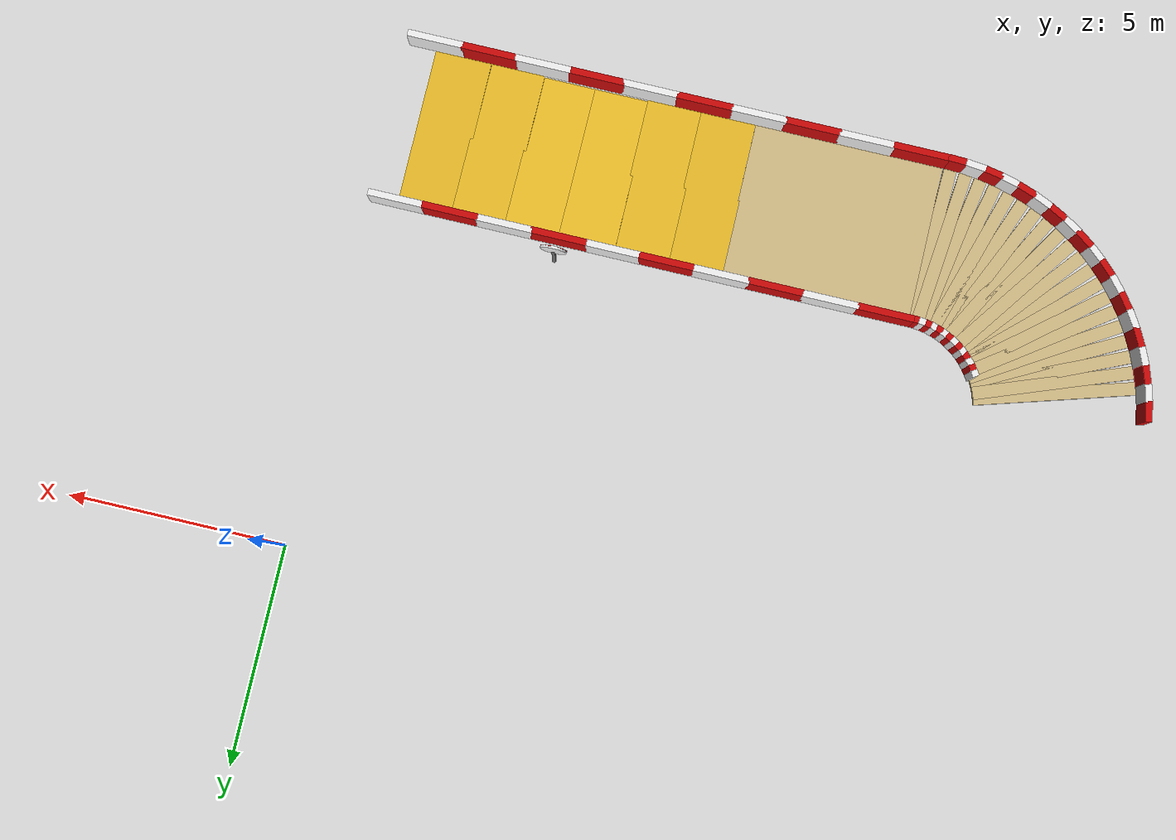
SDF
<sdf version="1.6">
 <world name="evrenos_teknofest_2026">
  <include><uri>model://sun</uri></include>
  <model name="main_course">
   <static>true</static>
   <link name="bottom_before_turn_0">
    <pose>-10.312500 -10.000000 -0.050000 0.000000 0.000000 0.000000</pose>
    <collision name="bottom_before_turn_0_collision">
     <geometry><box><size>4.375000 3.750000 0.100000</size></box></geometry>
    </collision>
    <visual name="bottom_before_turn_0_visual">
     <geometry><box><size>4.375000 3.750000 0.100000</size></box></geometry>
     <material><ambient>0.82 0.73 0.52 1</ambient><diffuse>0.82 0.73 0.52 1</diffuse></material>
    </visual>
   </link>
   <link name="side_slope_0">
    <pose>-1.250000 -10.000000 -0.050000 0.032006 0.000000 0.000000</pose>
    <collision name="side_slope_0_collision">
     <geometry><box><size>1.312500 3.748920 0.100000</size></box></geometry>
    </collision>
    <visual name="side_slope_0_visual">
     <geometry><box><size>1.312500 3.748920 0.100000</size></box></geometry>
     <material><ambient>0.9 0.72 0.15 1</ambient><diffuse>0.9 0.72 0.15 1</diffuse></material>
    </visual>
   </link>
   <link name="side_slope_1">
    <pose>-2.500000 -10.000000 -0.050000 0.080096 0.000000 0.000000</pose>
    <collision name="side_slope_1_collision">
     <geometry><box><size>1.312500 3.743266 0.100000</size></box></geometry>
    </collision>
    <visual name="side_slope_1_visual">
     <geometry><box><size>1.312500 3.743266 0.100000</size></box></geometry>
     <material><ambient>0.9 0.72 0.15 1</ambient><diffuse>0.9 0.72 0.15 1</diffuse></material>
    </visual>
   </link>
   <link name="side_slope_2">
    <pose>-3.750000 -10.000000 -0.050000 0.158656 0.000000 0.000000</pose>
    <collision name="side_slope_2_collision">
     <geometry><box><size>1.312500 3.723948 0.100000</size></box></geometry>
    </collision>
    <visual name="side_slope_2_visual">
     <geometry><box><size>1.312500 3.723948 0.100000</size></box></geometry>
     <material><ambient>0.9 0.72 0.15 1</ambient><diffuse>0.9 0.72 0.15 1</diffuse></material>
    </visual>
   </link>
   <link name="side_slope_3">
    <pose>-5.000000 -10.000000 -0.050000 0.158656 0.000000 0.000000</pose>
    <collision name="side_slope_3_collision">
     <geometry><box><size>1.312500 3.723948 0.100000</size></box></geometry>
    </collision>
    <visual name="side_slope_3_visual">
     <geometry><box><size>1.312500 3.723948 0.100000</size></box></geometry>
     <material><ambient>0.9 0.72 0.15 1</ambient><diffuse>0.9 0.72 0.15 1</diffuse></material>
    </visual>
   </link>
   <link name="side_slope_4">
    <pose>-6.250000 -10.000000 -0.050000 0.080096 0.000000 0.000000</pose>
    <collision name="side_slope_4_collision">
     <geometry><box><size>1.312500 3.743266 0.100000</size></box></geometry>
    </collision>
    <visual name="side_slope_4_visual">
     <geometry><box><size>1.312500 3.743266 0.100000</size></box></geometry>
     <material><ambient>0.9 0.72 0.15 1</ambient><diffuse>0.9 0.72 0.15 1</diffuse></material>
    </visual>
   </link>
   <link name="side_slope_5">
    <pose>-7.500000 -10.000000 -0.050000 0.032006 0.000000 0.000000</pose>
    <collision name="side_slope_5_collision">
     <geometry><box><size>1.312500 3.748920 0.100000</size></box></geometry>
    </collision>
    <visual name="side_slope_5_visual">
     <geometry><box><size>1.312500 3.748920 0.100000</size></box></geometry>
     <material><ambient>0.9 0.72 0.15 1</ambient><diffuse>0.9 0.72 0.15 1</diffuse></material>
    </visual>
   </link>
   <link name="left_turn_road_0">
    <pose>-12.622750 -9.998000 -0.050000 0.000000 0.000000 -3.174318</pose>
    <collision name="left_turn_road_0_collision">
     <geometry><box><size>0.294500 3.750000 0.100000</size></box></geometry>
    </collision>
    <visual name="left_turn_road_0_visual">
     <geometry><box><size>0.294500 3.750000 0.100000</size></box></geometry>
     <material><ambient>0.82 0.73 0.52 1</ambient><diffuse>0.82 0.73 0.52 1</diffuse></material>
    </visual>
   </link>
   <link name="left_turn_road_1">
    <pose>-12.867625 -9.982000 -0.050000 0.000000 0.000000 -3.239767</pose>
    <collision name="left_turn_road_1_collision">
     <geometry><box><size>0.294500 3.750000 0.100000</size></box></geometry>
    </collision>
    <visual name="left_turn_road_1_visual">
     <geometry><box><size>0.294500 3.750000 0.100000</size></box></geometry>
     <material><ambient>0.82 0.73 0.52 1</ambient><diffuse>0.82 0.73 0.52 1</diffuse></material>
    </visual>
   </link>
   <link name="left_turn_road_2">
    <pose>-13.110875 -9.949875 -0.050000 0.000000 0.000000 -3.305217</pose>
    <collision name="left_turn_road_2_collision">
     <geometry><box><size>0.294500 3.750000 0.100000</size></box></geometry>
    </collision>
    <visual name="left_turn_road_2_visual">
     <geometry><box><size>0.294500 3.750000 0.100000</size></box></geometry>
     <material><ambient>0.82 0.73 0.52 1</ambient><diffuse>0.82 0.73 0.52 1</diffuse></material>
    </visual>
   </link>
   <link name="left_turn_road_3">
    <pose>-13.351500 -9.902000 -0.050000 0.000000 0.000000 -3.370667</pose>
    <collision name="left_turn_road_3_collision">
     <geometry><box><size>0.294500 3.750000 0.100000</size></box></geometry>
    </collision>
    <visual name="left_turn_road_3_visual">
     <geometry><box><size>0.294500 3.750000 0.100000</size></box></geometry>
     <material><ambient>0.82 0.73 0.52 1</ambient><diffuse>0.82 0.73 0.52 1</diffuse></material>
    </visual>
   </link>
   <link name="left_turn_road_4">
    <pose>-13.588625 -9.838500 -0.050000 0.000000 0.000000 -3.436117</pose>
    <collision name="left_turn_road_4_collision">
     <geometry><box><size>0.294500 3.750000 0.100000</size></box></geometry>
    </collision>
    <visual name="left_turn_road_4_visual">
     <geometry><box><size>0.294500 3.750000 0.100000</size></box></geometry>
     <material><ambient>0.82 0.73 0.52 1</ambient><diffuse>0.82 0.73 0.52 1</diffuse></material>
    </visual>
   </link>
   <link name="left_turn_road_5">
    <pose>-13.821000 -9.759625 -0.050000 0.000000 0.000000 -3.501567</pose>
    <collision name="left_turn_road_5_collision">
     <geometry><box><size>0.294500 3.750000 0.100000</size></box></geometry>
    </collision>
    <visual name="left_turn_road_5_visual">
     <geometry><box><size>0.294500 3.750000 0.100000</size></box></geometry>
     <material><ambient>0.82 0.73 0.52 1</ambient><diffuse>0.82 0.73 0.52 1</diffuse></material>
    </visual>
   </link>
   <link name="left_turn_road_6">
    <pose>-14.047625 -9.665750 -0.050000 0.000000 0.000000 -3.567017</pose>
    <collision name="left_turn_road_6_collision">
     <geometry><box><size>0.294500 3.750000 0.100000</size></box></geometry>
    </collision>
    <visual name="left_turn_road_6_visual">
     <geometry><box><size>0.294500 3.750000 0.100000</size></box></geometry>
     <material><ambient>0.82 0.73 0.52 1</ambient><diffuse>0.82 0.73 0.52 1</diffuse></material>
    </visual>
   </link>
   <link name="left_turn_road_7">
    <pose>-14.267750 -9.557250 -0.050000 0.000000 0.000000 -3.632467</pose>
    <collision name="left_turn_road_7_collision">
     <geometry><box><size>0.294500 3.750000 0.100000</size></box></geometry>
    </collision>
    <visual name="left_turn_road_7_visual">
     <geometry><box><size>0.294500 3.750000 0.100000</size></box></geometry>
     <material><ambient>0.82 0.73 0.52 1</ambient><diffuse>0.82 0.73 0.52 1</diffuse></material>
    </visual>
   </link>
   <link name="left_turn_road_8">
    <pose>-14.480250 -9.434500 -0.050000 0.000000 0.000000 -3.697916</pose>
    <collision name="left_turn_road_8_collision">
     <geometry><box><size>0.294500 3.750000 0.100000</size></box></geometry>
    </collision>
    <visual name="left_turn_road_8_visual">
     <geometry><box><size>0.294500 3.750000 0.100000</size></box></geometry>
     <material><ambient>0.82 0.73 0.52 1</ambient><diffuse>0.82 0.73 0.52 1</diffuse></material>
    </visual>
   </link>
   <link name="left_turn_road_9">
    <pose>-14.684250 -9.298125 -0.050000 0.000000 0.000000 -3.763366</pose>
    <collision name="left_turn_road_9_collision">
     <geometry><box><size>0.294500 3.750000 0.100000</size></box></geometry>
    </collision>
    <visual name="left_turn_road_9_visual">
     <geometry><box><size>0.294500 3.750000 0.100000</size></box></geometry>
     <material><ambient>0.82 0.73 0.52 1</ambient><diffuse>0.82 0.73 0.52 1</diffuse></material>
    </visual>
   </link>
   <link name="left_turn_road_10">
    <pose>-14.879000 -9.148750 -0.050000 0.000000 0.000000 -3.828816</pose>
    <collision name="left_turn_road_10_collision">
     <geometry><box><size>0.294500 3.750000 0.100000</size></box></geometry>
    </collision>
    <visual name="left_turn_road_10_visual">
     <geometry><box><size>0.294500 3.750000 0.100000</size></box></geometry>
     <material><ambient>0.82 0.73 0.52 1</ambient><diffuse>0.82 0.73 0.52 1</diffuse></material>
    </visual>
   </link>
   <link name="left_turn_road_11">
    <pose>-15.063500 -8.987000 -0.050000 0.000000 0.000000 -3.894266</pose>
    <collision name="left_turn_road_11_collision">
     <geometry><box><size>0.294500 3.750000 0.100000</size></box></geometry>
    </collision>
    <visual name="left_turn_road_11_visual">
     <geometry><box><size>0.294500 3.750000 0.100000</size></box></geometry>
     <material><ambient>0.82 0.73 0.52 1</ambient><diffuse>0.82 0.73 0.52 1</diffuse></material>
    </visual>
   </link>
   <link name="left_turn_road_12">
    <pose>-15.237000 -8.813500 -0.050000 0.000000 0.000000 -3.959716</pose>
    <collision name="left_turn_road_12_collision">
     <geometry><box><size>0.294500 3.750000 0.100000</size></box></geometry>
    </collision>
    <visual name="left_turn_road_12_visual">
     <geometry><box><size>0.294500 3.750000 0.100000</size></box></geometry>
     <material><ambient>0.82 0.73 0.52 1</ambient><diffuse>0.82 0.73 0.52 1</diffuse></material>
    </visual>
   </link>
   <link name="left_turn_road_13">
    <pose>-15.398750 -8.629000 -0.050000 0.000000 0.000000 -4.025166</pose>
    <collision name="left_turn_road_13_collision">
     <geometry><box><size>0.294500 3.750000 0.100000</size></box></geometry>
    </collision>
    <visual name="left_turn_road_13_visual">
     <geometry><box><size>0.294500 3.750000 0.100000</size></box></geometry>
     <material><ambient>0.82 0.73 0.52 1</ambient><diffuse>0.82 0.73 0.52 1</diffuse></material>
    </visual>
   </link>
   <link name="left_turn_road_14">
    <pose>-15.548125 -8.434250 -0.050000 0.000000 0.000000 -4.090615</pose>
    <collision name="left_turn_road_14_collision">
     <geometry><box><size>0.294500 3.750000 0.100000</size></box></geometry>
    </collision>
    <visual name="left_turn_road_14_visual">
     <geometry><box><size>0.294500 3.750000 0.100000</size></box></geometry>
     <material><ambient>0.82 0.73 0.52 1</ambient><diffuse>0.82 0.73 0.52 1</diffuse></material>
    </visual>
   </link>
   <link name="left_turn_road_15">
    <pose>-15.684500 -8.230250 -0.050000 0.000000 0.000000 -4.156065</pose>
    <collision name="left_turn_road_15_collision">
     <geometry><box><size>0.294500 3.750000 0.100000</size></box></geometry>
    </collision>
    <visual name="left_turn_road_15_visual">
     <geometry><box><size>0.294500 3.750000 0.100000</size></box></geometry>
     <material><ambient>0.82 0.73 0.52 1</ambient><diffuse>0.82 0.73 0.52 1</diffuse></material>
    </visual>
   </link>
   <link name="left_turn_road_16">
    <pose>-15.807250 -8.017750 -0.050000 0.000000 0.000000 -4.221515</pose>
    <collision name="left_turn_road_16_collision">
     <geometry><box><size>0.294500 3.750000 0.100000</size></box></geometry>
    </collision>
    <visual name="left_turn_road_16_visual">
     <geometry><box><size>0.294500 3.750000 0.100000</size></box></geometry>
     <material><ambient>0.82 0.73 0.52 1</ambient><diffuse>0.82 0.73 0.52 1</diffuse></material>
    </visual>
   </link>
   <link name="left_turn_road_17">
    <pose>-15.915750 -7.797625 -0.050000 0.000000 0.000000 -4.286965</pose>
    <collision name="left_turn_road_17_collision">
     <geometry><box><size>0.294500 3.750000 0.100000</size></box></geometry>
    </collision>
    <visual name="left_turn_road_17_visual">
     <geometry><box><size>0.294500 3.750000 0.100000</size></box></geometry>
     <material><ambient>0.82 0.73 0.52 1</ambient><diffuse>0.82 0.73 0.52 1</diffuse></material>
    </visual>
   </link>
   <link name="left_turn_road_18">
    <pose>-16.009625 -7.571000 -0.050000 0.000000 0.000000 -4.352415</pose>
    <collision name="left_turn_road_18_collision">
     <geometry><box><size>0.294500 3.750000 0.100000</size></box></geometry>
    </collision>
    <visual name="left_turn_road_18_visual">
     <geometry><box><size>0.294500 3.750000 0.100000</size></box></geometry>
     <material><ambient>0.82 0.73 0.52 1</ambient><diffuse>0.82 0.73 0.52 1</diffuse></material>
    </visual>
   </link>
   <link name="left_turn_road_19">
    <pose>-16.088500 -7.338625 -0.050000 0.000000 0.000000 -4.417865</pose>
    <collision name="left_turn_road_19_collision">
     <geometry><box><size>0.294500 3.750000 0.100000</size></box></geometry>
    </collision>
    <visual name="left_turn_road_19_visual">
     <geometry><box><size>0.294500 3.750000 0.100000</size></box></geometry>
     <material><ambient>0.82 0.73 0.52 1</ambient><diffuse>0.82 0.73 0.52 1</diffuse></material>
    </visual>
   </link>
   <link name="bottom_bar_-1_0">
    <pose>-11.875000 -11.875000 0.400000 0.000000 0.000000 0.000000</pose>
    <collision name="bottom_bar_-1_0_collision">
     <geometry><box><size>1.287500 0.150000 0.800000</size></box></geometry>
    </collision>
    <visual name="bottom_bar_-1_0_visual">
     <geometry><box><size>1.287500 0.150000 0.800000</size></box></geometry>
     <material><ambient>0.8 0.03 0.03 1</ambient><diffuse>0.8 0.03 0.03 1</diffuse></material>
    </visual>
   </link>
   <link name="bottom_bar_-1_1">
    <pose>-10.625000 -11.875000 0.400000 0.000000 0.000000 0.000000</pose>
    <collision name="bottom_bar_-1_1_collision">
     <geometry><box><size>1.287500 0.150000 0.800000</size></box></geometry>
    </collision>
    <visual name="bottom_bar_-1_1_visual">
     <geometry><box><size>1.287500 0.150000 0.800000</size></box></geometry>
     <material><ambient>0.95 0.95 0.95 1</ambient><diffuse>0.95 0.95 0.95 1</diffuse></material>
    </visual>
   </link>
   <link name="bottom_bar_-1_2">
    <pose>-9.375000 -11.875000 0.400000 0.000000 0.000000 0.000000</pose>
    <collision name="bottom_bar_-1_2_collision">
     <geometry><box><size>1.287500 0.150000 0.800000</size></box></geometry>
    </collision>
    <visual name="bottom_bar_-1_2_visual">
     <geometry><box><size>1.287500 0.150000 0.800000</size></box></geometry>
     <material><ambient>0.8 0.03 0.03 1</ambient><diffuse>0.8 0.03 0.03 1</diffuse></material>
    </visual>
   </link>
   <link name="bottom_bar_-1_3">
    <pose>-8.125000 -11.875000 0.400000 0.000000 0.000000 0.000000</pose>
    <collision name="bottom_bar_-1_3_collision">
     <geometry><box><size>1.287500 0.150000 0.800000</size></box></geometry>
    </collision>
    <visual name="bottom_bar_-1_3_visual">
     <geometry><box><size>1.287500 0.150000 0.800000</size></box></geometry>
     <material><ambient>0.95 0.95 0.95 1</ambient><diffuse>0.95 0.95 0.95 1</diffuse></material>
    </visual>
   </link>
   <link name="bottom_bar_-1_4">
    <pose>-6.875000 -11.875000 0.400000 0.000000 0.000000 0.000000</pose>
    <collision name="bottom_bar_-1_4_collision">
     <geometry><box><size>1.287500 0.150000 0.800000</size></box></geometry>
    </collision>
    <visual name="bottom_bar_-1_4_visual">
     <geometry><box><size>1.287500 0.150000 0.800000</size></box></geometry>
     <material><ambient>0.8 0.03 0.03 1</ambient><diffuse>0.8 0.03 0.03 1</diffuse></material>
    </visual>
   </link>
   <link name="bottom_bar_-1_5">
    <pose>-5.625000 -11.875000 0.400000 0.000000 0.000000 0.000000</pose>
    <collision name="bottom_bar_-1_5_collision">
     <geometry><box><size>1.287500 0.150000 0.800000</size></box></geometry>
    </collision>
    <visual name="bottom_bar_-1_5_visual">
     <geometry><box><size>1.287500 0.150000 0.800000</size></box></geometry>
     <material><ambient>0.95 0.95 0.95 1</ambient><diffuse>0.95 0.95 0.95 1</diffuse></material>
    </visual>
   </link>
   <link name="bottom_bar_-1_6">
    <pose>-4.375000 -11.875000 0.400000 0.000000 0.000000 0.000000</pose>
    <collision name="bottom_bar_-1_6_collision">
     <geometry><box><size>1.287500 0.150000 0.800000</size></box></geometry>
    </collision>
    <visual name="bottom_bar_-1_6_visual">
     <geometry><box><size>1.287500 0.150000 0.800000</size></box></geometry>
     <material><ambient>0.8 0.03 0.03 1</ambient><diffuse>0.8 0.03 0.03 1</diffuse></material>
    </visual>
   </link>
   <link name="bottom_bar_-1_7">
    <pose>-3.125000 -11.875000 0.400000 0.000000 0.000000 0.000000</pose>
    <collision name="bottom_bar_-1_7_collision">
     <geometry><box><size>1.287500 0.150000 0.800000</size></box></geometry>
    </collision>
    <visual name="bottom_bar_-1_7_visual">
     <geometry><box><size>1.287500 0.150000 0.800000</size></box></geometry>
     <material><ambient>0.95 0.95 0.95 1</ambient><diffuse>0.95 0.95 0.95 1</diffuse></material>
    </visual>
   </link>
   <link name="bottom_bar_-1_8">
    <pose>-1.875000 -11.875000 0.400000 0.000000 0.000000 0.000000</pose>
    <collision name="bottom_bar_-1_8_collision">
     <geometry><box><size>1.287500 0.150000 0.800000</size></box></geometry>
    </collision>
    <visual name="bottom_bar_-1_8_visual">
     <geometry><box><size>1.287500 0.150000 0.800000</size></box></geometry>
     <material><ambient>0.8 0.03 0.03 1</ambient><diffuse>0.8 0.03 0.03 1</diffuse></material>
    </visual>
   </link>
   <link name="bottom_bar_-1_9">
    <pose>-0.625000 -11.875000 0.400000 0.000000 0.000000 0.000000</pose>
    <collision name="bottom_bar_-1_9_collision">
     <geometry><box><size>1.287500 0.150000 0.800000</size></box></geometry>
    </collision>
    <visual name="bottom_bar_-1_9_visual">
     <geometry><box><size>1.287500 0.150000 0.800000</size></box></geometry>
     <material><ambient>0.95 0.95 0.95 1</ambient><diffuse>0.95 0.95 0.95 1</diffuse></material>
    </visual>
   </link>
   <link name="bottom_bar_1_0">
    <pose>-11.875000 -8.125000 0.400000 0.000000 0.000000 0.000000</pose>
    <collision name="bottom_bar_1_0_collision">
     <geometry><box><size>1.287500 0.150000 0.800000</size></box></geometry>
    </collision>
    <visual name="bottom_bar_1_0_visual">
     <geometry><box><size>1.287500 0.150000 0.800000</size></box></geometry>
     <material><ambient>0.8 0.03 0.03 1</ambient><diffuse>0.8 0.03 0.03 1</diffuse></material>
    </visual>
   </link>
   <link name="bottom_bar_1_1">
    <pose>-10.625000 -8.125000 0.400000 0.000000 0.000000 0.000000</pose>
    <collision name="bottom_bar_1_1_collision">
     <geometry><box><size>1.287500 0.150000 0.800000</size></box></geometry>
    </collision>
    <visual name="bottom_bar_1_1_visual">
     <geometry><box><size>1.287500 0.150000 0.800000</size></box></geometry>
     <material><ambient>0.95 0.95 0.95 1</ambient><diffuse>0.95 0.95 0.95 1</diffuse></material>
    </visual>
   </link>
   <link name="bottom_bar_1_2">
    <pose>-9.375000 -8.125000 0.400000 0.000000 0.000000 0.000000</pose>
    <collision name="bottom_bar_1_2_collision">
     <geometry><box><size>1.287500 0.150000 0.800000</size></box></geometry>
    </collision>
    <visual name="bottom_bar_1_2_visual">
     <geometry><box><size>1.287500 0.150000 0.800000</size></box></geometry>
     <material><ambient>0.8 0.03 0.03 1</ambient><diffuse>0.8 0.03 0.03 1</diffuse></material>
    </visual>
   </link>
   <link name="bottom_bar_1_3">
    <pose>-8.125000 -8.125000 0.400000 0.000000 0.000000 0.000000</pose>
    <collision name="bottom_bar_1_3_collision">
     <geometry><box><size>1.287500 0.150000 0.800000</size></box></geometry>
    </collision>
    <visual name="bottom_bar_1_3_visual">
     <geometry><box><size>1.287500 0.150000 0.800000</size></box></geometry>
     <material><ambient>0.95 0.95 0.95 1</ambient><diffuse>0.95 0.95 0.95 1</diffuse></material>
    </visual>
   </link>
   <link name="bottom_bar_1_4">
    <pose>-6.875000 -8.125000 0.400000 0.000000 0.000000 0.000000</pose>
    <collision name="bottom_bar_1_4_collision">
     <geometry><box><size>1.287500 0.150000 0.800000</size></box></geometry>
    </collision>
    <visual name="bottom_bar_1_4_visual">
     <geometry><box><size>1.287500 0.150000 0.800000</size></box></geometry>
     <material><ambient>0.8 0.03 0.03 1</ambient><diffuse>0.8 0.03 0.03 1</diffuse></material>
    </visual>
   </link>
   <link name="bottom_bar_1_5">
    <pose>-5.625000 -8.125000 0.400000 0.000000 0.000000 0.000000</pose>
    <collision name="bottom_bar_1_5_collision">
     <geometry><box><size>1.287500 0.150000 0.800000</size></box></geometry>
    </collision>
    <visual name="bottom_bar_1_5_visual">
     <geometry><box><size>1.287500 0.150000 0.800000</size></box></geometry>
     <material><ambient>0.95 0.95 0.95 1</ambient><diffuse>0.95 0.95 0.95 1</diffuse></material>
    </visual>
   </link>
   <link name="bottom_bar_1_6">
    <pose>-4.375000 -8.125000 0.400000 0.000000 0.000000 0.000000</pose>
    <collision name="bottom_bar_1_6_collision">
     <geometry><box><size>1.287500 0.150000 0.800000</size></box></geometry>
    </collision>
    <visual name="bottom_bar_1_6_visual">
     <geometry><box><size>1.287500 0.150000 0.800000</size></box></geometry>
     <material><ambient>0.8 0.03 0.03 1</ambient><diffuse>0.8 0.03 0.03 1</diffuse></material>
    </visual>
   </link>
   <link name="bottom_bar_1_7">
    <pose>-3.125000 -8.125000 0.400000 0.000000 0.000000 0.000000</pose>
    <collision name="bottom_bar_1_7_collision">
     <geometry><box><size>1.287500 0.150000 0.800000</size></box></geometry>
    </collision>
    <visual name="bottom_bar_1_7_visual">
     <geometry><box><size>1.287500 0.150000 0.800000</size></box></geometry>
     <material><ambient>0.95 0.95 0.95 1</ambient><diffuse>0.95 0.95 0.95 1</diffuse></material>
    </visual>
   </link>
   <link name="bottom_bar_1_8">
    <pose>-1.875000 -8.125000 0.400000 0.000000 0.000000 0.000000</pose>
    <collision name="bottom_bar_1_8_collision">
     <geometry><box><size>1.287500 0.150000 0.800000</size></box></geometry>
    </collision>
    <visual name="bottom_bar_1_8_visual">
     <geometry><box><size>1.287500 0.150000 0.800000</size></box></geometry>
     <material><ambient>0.8 0.03 0.03 1</ambient><diffuse>0.8 0.03 0.03 1</diffuse></material>
    </visual>
   </link>
   <link name="bottom_bar_1_9">
    <pose>-0.625000 -8.125000 0.400000 0.000000 0.000000 0.000000</pose>
    <collision name="bottom_bar_1_9_collision">
     <geometry><box><size>1.287500 0.150000 0.800000</size></box></geometry>
    </collision>
    <visual name="bottom_bar_1_9_visual">
     <geometry><box><size>1.287500 0.150000 0.800000</size></box></geometry>
     <material><ambient>0.95 0.95 0.95 1</ambient><diffuse>0.95 0.95 0.95 1</diffuse></material>
    </visual>
   </link>
   <link name="left_turn_bar_0_0">
    <pose>-12.570125 -8.123750 0.400000 0.000000 0.000000 -3.178993</pose>
    <collision name="left_turn_bar_0_0_collision">
     <geometry><box><size>0.154250 0.150000 0.800000</size></box></geometry>
    </collision>
    <visual name="left_turn_bar_0_0_visual">
     <geometry><box><size>0.154250 0.150000 0.800000</size></box></geometry>
     <material><ambient>0.8 0.03 0.03 1</ambient><diffuse>0.8 0.03 0.03 1</diffuse></material>
    </visual>
   </link>
   <link name="left_turn_bar_0_1">
    <pose>-12.709875 -8.113250 0.400000 0.000000 0.000000 -3.253792</pose>
    <collision name="left_turn_bar_0_1_collision">
     <geometry><box><size>0.154250 0.150000 0.800000</size></box></geometry>
    </collision>
    <visual name="left_turn_bar_0_1_visual">
     <geometry><box><size>0.154250 0.150000 0.800000</size></box></geometry>
     <material><ambient>0.95 0.95 0.95 1</ambient><diffuse>0.95 0.95 0.95 1</diffuse></material>
    </visual>
   </link>
   <link name="left_turn_bar_0_2">
    <pose>-12.848625 -8.092250 0.400000 0.000000 0.000000 -3.328592</pose>
    <collision name="left_turn_bar_0_2_collision">
     <geometry><box><size>0.154250 0.150000 0.800000</size></box></geometry>
    </collision>
    <visual name="left_turn_bar_0_2_visual">
     <geometry><box><size>0.154250 0.150000 0.800000</size></box></geometry>
     <material><ambient>0.8 0.03 0.03 1</ambient><diffuse>0.8 0.03 0.03 1</diffuse></material>
    </visual>
   </link>
   <link name="left_turn_bar_0_3">
    <pose>-12.985250 -8.061125 0.400000 0.000000 0.000000 -3.403392</pose>
    <collision name="left_turn_bar_0_3_collision">
     <geometry><box><size>0.154250 0.150000 0.800000</size></box></geometry>
    </collision>
    <visual name="left_turn_bar_0_3_visual">
     <geometry><box><size>0.154250 0.150000 0.800000</size></box></geometry>
     <material><ambient>0.95 0.95 0.95 1</ambient><diffuse>0.95 0.95 0.95 1</diffuse></material>
    </visual>
   </link>
   <link name="left_turn_bar_0_4">
    <pose>-13.119250 -8.019750 0.400000 0.000000 0.000000 -3.478192</pose>
    <collision name="left_turn_bar_0_4_collision">
     <geometry><box><size>0.154250 0.150000 0.800000</size></box></geometry>
    </collision>
    <visual name="left_turn_bar_0_4_visual">
     <geometry><box><size>0.154250 0.150000 0.800000</size></box></geometry>
     <material><ambient>0.8 0.03 0.03 1</ambient><diffuse>0.8 0.03 0.03 1</diffuse></material>
    </visual>
   </link>
   <link name="left_turn_bar_0_5">
    <pose>-13.249750 -7.968500 0.400000 0.000000 0.000000 -3.552992</pose>
    <collision name="left_turn_bar_0_5_collision">
     <geometry><box><size>0.154250 0.150000 0.800000</size></box></geometry>
    </collision>
    <visual name="left_turn_bar_0_5_visual">
     <geometry><box><size>0.154250 0.150000 0.800000</size></box></geometry>
     <material><ambient>0.95 0.95 0.95 1</ambient><diffuse>0.95 0.95 0.95 1</diffuse></material>
    </visual>
   </link>
   <link name="left_turn_bar_0_6">
    <pose>-13.376125 -7.907750 0.400000 0.000000 0.000000 -3.627792</pose>
    <collision name="left_turn_bar_0_6_collision">
     <geometry><box><size>0.154250 0.150000 0.800000</size></box></geometry>
    </collision>
    <visual name="left_turn_bar_0_6_visual">
     <geometry><box><size>0.154250 0.150000 0.800000</size></box></geometry>
     <material><ambient>0.8 0.03 0.03 1</ambient><diffuse>0.8 0.03 0.03 1</diffuse></material>
    </visual>
   </link>
   <link name="left_turn_bar_0_7">
    <pose>-13.497500 -7.837625 0.400000 0.000000 0.000000 -3.702591</pose>
    <collision name="left_turn_bar_0_7_collision">
     <geometry><box><size>0.154250 0.150000 0.800000</size></box></geometry>
    </collision>
    <visual name="left_turn_bar_0_7_visual">
     <geometry><box><size>0.154250 0.150000 0.800000</size></box></geometry>
     <material><ambient>0.95 0.95 0.95 1</ambient><diffuse>0.95 0.95 0.95 1</diffuse></material>
    </visual>
   </link>
   <link name="left_turn_bar_0_8">
    <pose>-13.613375 -7.758625 0.400000 0.000000 0.000000 -3.777391</pose>
    <collision name="left_turn_bar_0_8_collision">
     <geometry><box><size>0.154250 0.150000 0.800000</size></box></geometry>
    </collision>
    <visual name="left_turn_bar_0_8_visual">
     <geometry><box><size>0.154250 0.150000 0.800000</size></box></geometry>
     <material><ambient>0.8 0.03 0.03 1</ambient><diffuse>0.8 0.03 0.03 1</diffuse></material>
    </visual>
   </link>
   <link name="left_turn_bar_0_9">
    <pose>-13.723000 -7.671250 0.400000 0.000000 0.000000 -3.852191</pose>
    <collision name="left_turn_bar_0_9_collision">
     <geometry><box><size>0.154250 0.150000 0.800000</size></box></geometry>
    </collision>
    <visual name="left_turn_bar_0_9_visual">
     <geometry><box><size>0.154250 0.150000 0.800000</size></box></geometry>
     <material><ambient>0.95 0.95 0.95 1</ambient><diffuse>0.95 0.95 0.95 1</diffuse></material>
    </visual>
   </link>
   <link name="left_turn_bar_0_10">
    <pose>-13.825875 -7.575875 0.400000 0.000000 0.000000 -3.926991</pose>
    <collision name="left_turn_bar_0_10_collision">
     <geometry><box><size>0.154250 0.150000 0.800000</size></box></geometry>
    </collision>
    <visual name="left_turn_bar_0_10_visual">
     <geometry><box><size>0.154250 0.150000 0.800000</size></box></geometry>
     <material><ambient>0.8 0.03 0.03 1</ambient><diffuse>0.8 0.03 0.03 1</diffuse></material>
    </visual>
   </link>
   <link name="left_turn_bar_0_11">
    <pose>-13.921250 -7.473000 0.400000 0.000000 0.000000 -4.001791</pose>
    <collision name="left_turn_bar_0_11_collision">
     <geometry><box><size>0.154250 0.150000 0.800000</size></box></geometry>
    </collision>
    <visual name="left_turn_bar_0_11_visual">
     <geometry><box><size>0.154250 0.150000 0.800000</size></box></geometry>
     <material><ambient>0.95 0.95 0.95 1</ambient><diffuse>0.95 0.95 0.95 1</diffuse></material>
    </visual>
   </link>
   <link name="left_turn_bar_0_12">
    <pose>-14.008625 -7.363375 0.400000 0.000000 0.000000 -4.076590</pose>
    <collision name="left_turn_bar_0_12_collision">
     <geometry><box><size>0.154250 0.150000 0.800000</size></box></geometry>
    </collision>
    <visual name="left_turn_bar_0_12_visual">
     <geometry><box><size>0.154250 0.150000 0.800000</size></box></geometry>
     <material><ambient>0.8 0.03 0.03 1</ambient><diffuse>0.8 0.03 0.03 1</diffuse></material>
    </visual>
   </link>
   <link name="left_turn_bar_0_13">
    <pose>-14.087625 -7.247500 0.400000 0.000000 0.000000 -4.151390</pose>
    <collision name="left_turn_bar_0_13_collision">
     <geometry><box><size>0.154250 0.150000 0.800000</size></box></geometry>
    </collision>
    <visual name="left_turn_bar_0_13_visual">
     <geometry><box><size>0.154250 0.150000 0.800000</size></box></geometry>
     <material><ambient>0.95 0.95 0.95 1</ambient><diffuse>0.95 0.95 0.95 1</diffuse></material>
    </visual>
   </link>
   <link name="left_turn_bar_1_0">
    <pose>-12.710375 -11.871125 0.400000 0.000000 0.000000 -3.178993</pose>
    <collision name="left_turn_bar_1_0_collision">
     <geometry><box><size>0.462875 0.150000 0.800000</size></box></geometry>
    </collision>
    <visual name="left_turn_bar_1_0_visual">
     <geometry><box><size>0.462875 0.150000 0.800000</size></box></geometry>
     <material><ambient>0.8 0.03 0.03 1</ambient><diffuse>0.8 0.03 0.03 1</diffuse></material>
    </visual>
   </link>
   <link name="left_turn_bar_1_1">
    <pose>-13.129750 -11.839625 0.400000 0.000000 0.000000 -3.253792</pose>
    <collision name="left_turn_bar_1_1_collision">
     <geometry><box><size>0.462875 0.150000 0.800000</size></box></geometry>
    </collision>
    <visual name="left_turn_bar_1_1_visual">
     <geometry><box><size>0.462875 0.150000 0.800000</size></box></geometry>
     <material><ambient>0.95 0.95 0.95 1</ambient><diffuse>0.95 0.95 0.95 1</diffuse></material>
    </visual>
   </link>
   <link name="left_turn_bar_1_2">
    <pose>-13.545750 -11.776875 0.400000 0.000000 0.000000 -3.328592</pose>
    <collision name="left_turn_bar_1_2_collision">
     <geometry><box><size>0.462875 0.150000 0.800000</size></box></geometry>
    </collision>
    <visual name="left_turn_bar_1_2_visual">
     <geometry><box><size>0.462875 0.150000 0.800000</size></box></geometry>
     <material><ambient>0.8 0.03 0.03 1</ambient><diffuse>0.8 0.03 0.03 1</diffuse></material>
    </visual>
   </link>
   <link name="left_turn_bar_1_3">
    <pose>-13.955875 -11.683375 0.400000 0.000000 0.000000 -3.403392</pose>
    <collision name="left_turn_bar_1_3_collision">
     <geometry><box><size>0.462875 0.150000 0.800000</size></box></geometry>
    </collision>
    <visual name="left_turn_bar_1_3_visual">
     <geometry><box><size>0.462875 0.150000 0.800000</size></box></geometry>
     <material><ambient>0.95 0.95 0.95 1</ambient><diffuse>0.95 0.95 0.95 1</diffuse></material>
    </visual>
   </link>
   <link name="left_turn_bar_1_4">
    <pose>-14.357875 -11.559375 0.400000 0.000000 0.000000 -3.478192</pose>
    <collision name="left_turn_bar_1_4_collision">
     <geometry><box><size>0.462875 0.150000 0.800000</size></box></geometry>
    </collision>
    <visual name="left_turn_bar_1_4_visual">
     <geometry><box><size>0.462875 0.150000 0.800000</size></box></geometry>
     <material><ambient>0.8 0.03 0.03 1</ambient><diffuse>0.8 0.03 0.03 1</diffuse></material>
    </visual>
   </link>
   <link name="left_turn_bar_1_5">
    <pose>-14.749375 -11.405625 0.400000 0.000000 0.000000 -3.552992</pose>
    <collision name="left_turn_bar_1_5_collision">
     <geometry><box><size>0.462875 0.150000 0.800000</size></box></geometry>
    </collision>
    <visual name="left_turn_bar_1_5_visual">
     <geometry><box><size>0.462875 0.150000 0.800000</size></box></geometry>
     <material><ambient>0.95 0.95 0.95 1</ambient><diffuse>0.95 0.95 0.95 1</diffuse></material>
    </visual>
   </link>
   <link name="left_turn_bar_1_6">
    <pose>-15.128375 -11.223125 0.400000 0.000000 0.000000 -3.627792</pose>
    <collision name="left_turn_bar_1_6_collision">
     <geometry><box><size>0.462875 0.150000 0.800000</size></box></geometry>
    </collision>
    <visual name="left_turn_bar_1_6_visual">
     <geometry><box><size>0.462875 0.150000 0.800000</size></box></geometry>
     <material><ambient>0.8 0.03 0.03 1</ambient><diffuse>0.8 0.03 0.03 1</diffuse></material>
    </visual>
   </link>
   <link name="left_turn_bar_1_7">
    <pose>-15.492625 -11.012875 0.400000 0.000000 0.000000 -3.702591</pose>
    <collision name="left_turn_bar_1_7_collision">
     <geometry><box><size>0.462875 0.150000 0.800000</size></box></geometry>
    </collision>
    <visual name="left_turn_bar_1_7_visual">
     <geometry><box><size>0.462875 0.150000 0.800000</size></box></geometry>
     <material><ambient>0.95 0.95 0.95 1</ambient><diffuse>0.95 0.95 0.95 1</diffuse></material>
    </visual>
   </link>
   <link name="left_turn_bar_1_8">
    <pose>-15.840250 -10.775875 0.400000 0.000000 0.000000 -3.777391</pose>
    <collision name="left_turn_bar_1_8_collision">
     <geometry><box><size>0.462875 0.150000 0.800000</size></box></geometry>
    </collision>
    <visual name="left_turn_bar_1_8_visual">
     <geometry><box><size>0.462875 0.150000 0.800000</size></box></geometry>
     <material><ambient>0.8 0.03 0.03 1</ambient><diffuse>0.8 0.03 0.03 1</diffuse></material>
    </visual>
   </link>
   <link name="left_turn_bar_1_9">
    <pose>-16.169125 -10.513625 0.400000 0.000000 0.000000 -3.852191</pose>
    <collision name="left_turn_bar_1_9_collision">
     <geometry><box><size>0.462875 0.150000 0.800000</size></box></geometry>
    </collision>
    <visual name="left_turn_bar_1_9_visual">
     <geometry><box><size>0.462875 0.150000 0.800000</size></box></geometry>
     <material><ambient>0.95 0.95 0.95 1</ambient><diffuse>0.95 0.95 0.95 1</diffuse></material>
    </visual>
   </link>
   <link name="left_turn_bar_1_10">
    <pose>-16.477500 -10.227500 0.400000 0.000000 0.000000 -3.926991</pose>
    <collision name="left_turn_bar_1_10_collision">
     <geometry><box><size>0.462875 0.150000 0.800000</size></box></geometry>
    </collision>
    <visual name="left_turn_bar_1_10_visual">
     <geometry><box><size>0.462875 0.150000 0.800000</size></box></geometry>
     <material><ambient>0.8 0.03 0.03 1</ambient><diffuse>0.8 0.03 0.03 1</diffuse></material>
    </visual>
   </link>
   <link name="left_turn_bar_1_11">
    <pose>-16.763625 -9.919125 0.400000 0.000000 0.000000 -4.001791</pose>
    <collision name="left_turn_bar_1_11_collision">
     <geometry><box><size>0.462875 0.150000 0.800000</size></box></geometry>
    </collision>
    <visual name="left_turn_bar_1_11_visual">
     <geometry><box><size>0.462875 0.150000 0.800000</size></box></geometry>
     <material><ambient>0.95 0.95 0.95 1</ambient><diffuse>0.95 0.95 0.95 1</diffuse></material>
    </visual>
   </link>
   <link name="left_turn_bar_1_12">
    <pose>-17.025875 -9.590250 0.400000 0.000000 0.000000 -4.076590</pose>
    <collision name="left_turn_bar_1_12_collision">
     <geometry><box><size>0.462875 0.150000 0.800000</size></box></geometry>
    </collision>
    <visual name="left_turn_bar_1_12_visual">
     <geometry><box><size>0.462875 0.150000 0.800000</size></box></geometry>
     <material><ambient>0.8 0.03 0.03 1</ambient><diffuse>0.8 0.03 0.03 1</diffuse></material>
    </visual>
   </link>
   <link name="left_turn_bar_1_13">
    <pose>-17.262875 -9.242625 0.400000 0.000000 0.000000 -4.151390</pose>
    <collision name="left_turn_bar_1_13_collision">
     <geometry><box><size>0.462875 0.150000 0.800000</size></box></geometry>
    </collision>
    <visual name="left_turn_bar_1_13_visual">
     <geometry><box><size>0.462875 0.150000 0.800000</size></box></geometry>
     <material><ambient>0.95 0.95 0.95 1</ambient><diffuse>0.95 0.95 0.95 1</diffuse></material>
    </visual>
   </link>
   <link name="left_turn_bar_1_14">
    <pose>-17.473125 -8.878375 0.400000 0.000000 0.000000 -4.226190</pose>
    <collision name="left_turn_bar_1_14_collision">
     <geometry><box><size>0.462875 0.150000 0.800000</size></box></geometry>
    </collision>
    <visual name="left_turn_bar_1_14_visual">
     <geometry><box><size>0.462875 0.150000 0.800000</size></box></geometry>
     <material><ambient>0.8 0.03 0.03 1</ambient><diffuse>0.8 0.03 0.03 1</diffuse></material>
    </visual>
   </link>
   <link name="left_turn_bar_1_15">
    <pose>-17.655625 -8.499375 0.400000 0.000000 0.000000 -4.300990</pose>
    <collision name="left_turn_bar_1_15_collision">
     <geometry><box><size>0.462875 0.150000 0.800000</size></box></geometry>
    </collision>
    <visual name="left_turn_bar_1_15_visual">
     <geometry><box><size>0.462875 0.150000 0.800000</size></box></geometry>
     <material><ambient>0.95 0.95 0.95 1</ambient><diffuse>0.95 0.95 0.95 1</diffuse></material>
    </visual>
   </link>
   <link name="left_turn_bar_1_16">
    <pose>-17.809375 -8.107875 0.400000 0.000000 0.000000 -4.375790</pose>
    <collision name="left_turn_bar_1_16_collision">
     <geometry><box><size>0.462875 0.150000 0.800000</size></box></geometry>
    </collision>
    <visual name="left_turn_bar_1_16_visual">
     <geometry><box><size>0.462875 0.150000 0.800000</size></box></geometry>
     <material><ambient>0.8 0.03 0.03 1</ambient><diffuse>0.8 0.03 0.03 1</diffuse></material>
    </visual>
   </link>
   <link name="left_turn_bar_1_17">
    <pose>-17.933375 -7.705875 0.400000 0.000000 0.000000 -4.450590</pose>
    <collision name="left_turn_bar_1_17_collision">
     <geometry><box><size>0.462875 0.150000 0.800000</size></box></geometry>
    </collision>
    <visual name="left_turn_bar_1_17_visual">
     <geometry><box><size>0.462875 0.150000 0.800000</size></box></geometry>
     <material><ambient>0.95 0.95 0.95 1</ambient><diffuse>0.95 0.95 0.95 1</diffuse></material>
    </visual>
   </link>
   <link name="left_turn_bar_1_18">
    <pose>-18.026875 -7.295750 0.400000 0.000000 0.000000 -4.525389</pose>
    <collision name="left_turn_bar_1_18_collision">
     <geometry><box><size>0.462875 0.150000 0.800000</size></box></geometry>
    </collision>
    <visual name="left_turn_bar_1_18_visual">
     <geometry><box><size>0.462875 0.150000 0.800000</size></box></geometry>
     <material><ambient>0.8 0.03 0.03 1</ambient><diffuse>0.8 0.03 0.03 1</diffuse></material>
    </visual>
   </link>
   <link name="stage3_post">
    <pose>-4.375000 -7.687500 0.650000 0.000000 0.000000 0.000000</pose>
    <collision name="stage3_post_collision">
     <geometry><box><size>0.075000 0.075000 1.300000</size></box></geometry>
    </collision>
    <visual name="stage3_post_visual">
     <geometry><box><size>0.075000 0.075000 1.300000</size></box></geometry>
     <material><ambient>0.45 0.45 0.45 1</ambient><diffuse>0.45 0.45 0.45 1</diffuse></material>
    </visual>
   </link>
   <link name="stage3_disc">
    <pose>-4.375000 -7.687500 1.450000 1.570796 0.000000 0.000000</pose>
    <visual name="stage3_disc_visual">
     <geometry><cylinder><radius>0.300000</radius><length>0.062500</length></cylinder></geometry>
     <material><ambient>0.95 0.95 0.95 1</ambient><diffuse>0.95 0.95 0.95 1</diffuse></material>
    </visual>
   </link>
   <link name="stage3_redring">
    <pose>-4.375000 -7.702500 1.450000 1.570796 0.000000 0.000000</pose>
    <visual name="stage3_redring_visual">
     <geometry><cylinder><radius>0.300000</radius><length>0.022500</length></cylinder></geometry>
     <material><ambient>0.8 0.03 0.03 1</ambient><diffuse>0.8 0.03 0.03 1</diffuse></material>
    </visual>
   </link>
   <link name="stage3_inner">
    <pose>-4.375000 -7.717500 1.450000 1.570796 0.000000 0.000000</pose>
    <visual name="stage3_inner_visual">
     <geometry><cylinder><radius>0.240000</radius><length>0.025000</length></cylinder></geometry>
     <material><ambient>0.95 0.95 0.95 1</ambient><diffuse>0.95 0.95 0.95 1</diffuse></material>
    </visual>
   </link>
  </model>
 </world>
</sdf>
